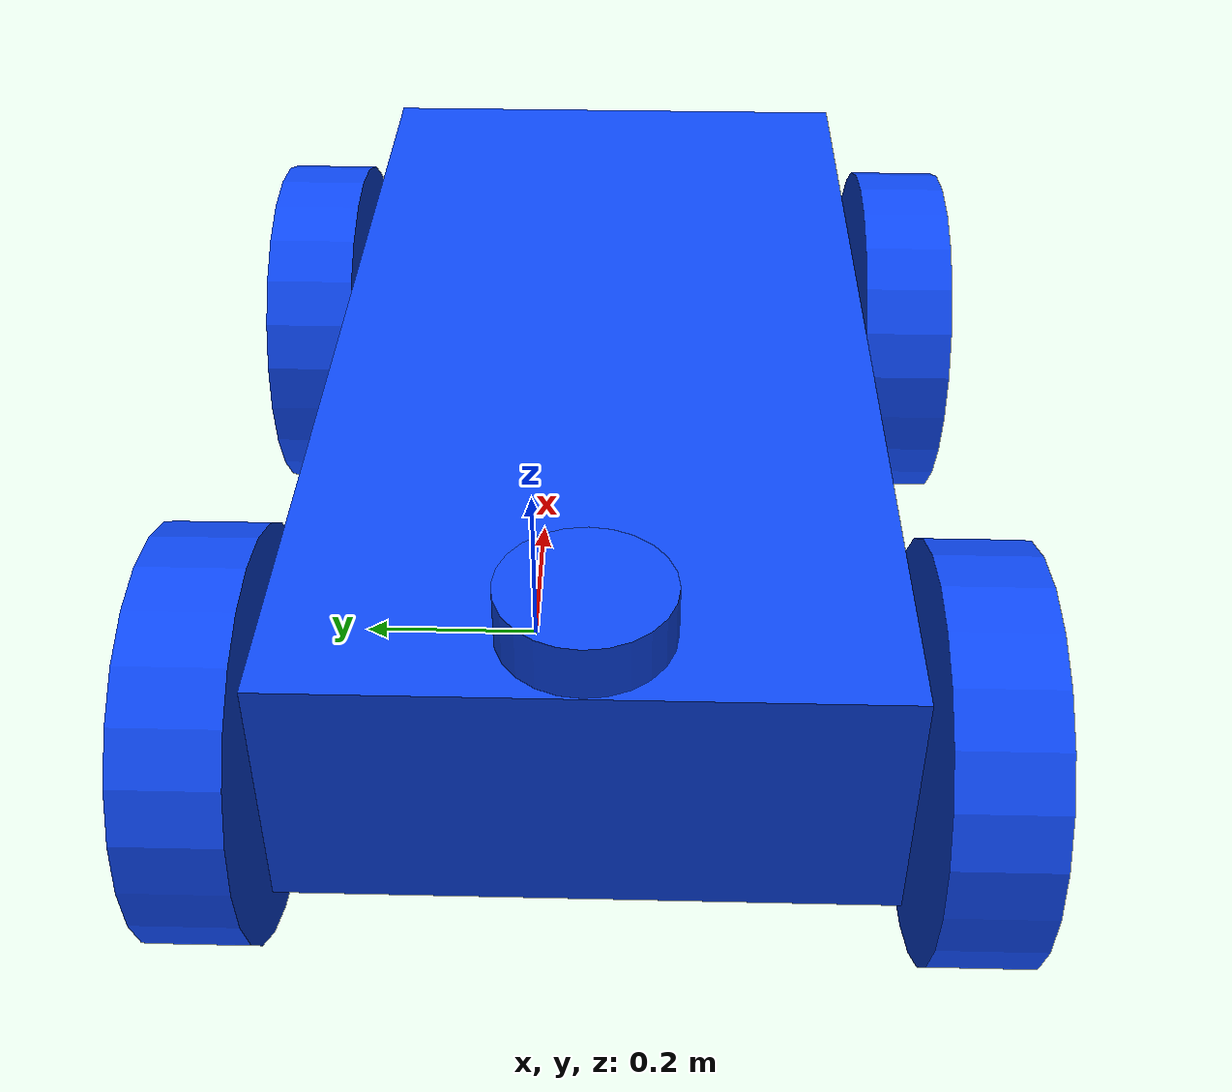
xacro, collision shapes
<?xml version="1.0" ?>
<robot name="k12" xmlns:xacro="http://www.ros.org/wiki/xacro">

<xacro:include filename="$(find k12_description)/urdf/materials.xacro" />
<xacro:include filename="$(find k12_description)/urdf/k12.trans" />
<xacro:include filename="$(find k12_description)/urdf/k12.gazebo" />

<link name="base_link">
  <inertial>
    <origin xyz="0 -0.08 0.30" rpy="0 0 0"/>
    <mass value="24.0"/>
    <inertia ixx="0.7202" iyy="2.5352" izz="3.0250" ixy="0.0" iyz="0.0" ixz="0.0"/>
  </inertial>
  <visual>
    <origin xyz="0 0 0" rpy="0 0 0"/>
    <geometry>
      <mesh filename="file://$(find k12_description)/meshes/base_link.stl" scale="0.001 0.001 0.001"/>
    </geometry>
    <material name="silver"/>
  </visual>
  <visual name="rviz_blue_body_marker">
    <origin xyz="0 -0.08 0.46" rpy="0 0 0"/>
    <geometry>
      <box size="1.05 0.50 0.08"/>
    </geometry>
    <material name="rviz_blue"/>
  </visual>
  <visual name="rviz_front_direction_marker">
    <origin xyz="0.42 -0.08 0.52" rpy="0 0 0"/>
    <geometry>
      <box size="0.18 0.42 0.045"/>
    </geometry>
    <material name="rviz_yellow"/>
  </visual>
  <collision>
    <origin xyz="0 -0.08 0.30" rpy="0 0 0"/>
    <geometry>
      <box size="1.10 0.55 0.24"/>
    </geometry>
  </collision>
</link>

<link name="left_front_1">
  <inertial>
    <origin xyz="0 0 0" rpy="0 0 0"/>
    <mass value="1.5"/>
    <inertia ixx="0.01625" iyy="0.03000" izz="0.01625" ixy="0.0" iyz="0.0" ixz="0.0"/>
  </inertial>
  <visual>
    <origin xyz="0.379738 0.435 -0.2" rpy="0 0 0"/>
    <geometry>
      <mesh filename="file://$(find k12_description)/meshes/left_front_1.stl" scale="0.001 0.001 0.001"/>
    </geometry>
    <material name="silver"/>
  </visual>
  <collision>
    <origin xyz="0 0 0" rpy="1.57079632679 0 0"/>
    <geometry>
      <cylinder radius="0.20" length="0.10"/>
    </geometry>
  </collision>
</link>

<link name="left_back_1">
  <inertial>
    <origin xyz="0 0 0" rpy="0 0 0"/>
    <mass value="1.5"/>
    <inertia ixx="0.01625" iyy="0.03000" izz="0.01625" ixy="0.0" iyz="0.0" ixz="0.0"/>
  </inertial>
  <visual>
    <origin xyz="-0.373496 0.435 -0.2" rpy="0 0 0"/>
    <geometry>
      <mesh filename="file://$(find k12_description)/meshes/left_back_1.stl" scale="0.001 0.001 0.001"/>
    </geometry>
    <material name="silver"/>
  </visual>
  <collision>
    <origin xyz="0 0 0" rpy="1.57079632679 0 0"/>
    <geometry>
      <cylinder radius="0.20" length="0.10"/>
    </geometry>
  </collision>
</link>

<link name="right_back_1">
  <inertial>
    <origin xyz="0 0 0" rpy="0 0 0"/>
    <mass value="1.5"/>
    <inertia ixx="0.01625" iyy="0.03000" izz="0.01625" ixy="0.0" iyz="0.0" ixz="0.0"/>
  </inertial>
  <visual>
    <origin xyz="-0.373538 -0.275 -0.2" rpy="0 0 0"/>
    <geometry>
      <mesh filename="file://$(find k12_description)/meshes/right_back_1.stl" scale="0.001 0.001 0.001"/>
    </geometry>
    <material name="silver"/>
  </visual>
  <collision>
    <origin xyz="0 0 0" rpy="1.57079632679 0 0"/>
    <geometry>
      <cylinder radius="0.20" length="0.10"/>
    </geometry>
  </collision>
</link>

<link name="right_front_1">
  <inertial>
    <origin xyz="0 0 0" rpy="0 0 0"/>
    <mass value="1.5"/>
    <inertia ixx="0.01625" iyy="0.03000" izz="0.01625" ixy="0.0" iyz="0.0" ixz="0.0"/>
  </inertial>
  <visual>
    <origin xyz="0.372187 -0.275 -0.2" rpy="0 0 0"/>
    <geometry>
      <mesh filename="file://$(find k12_description)/meshes/right_front_1.stl" scale="0.001 0.001 0.001"/>
    </geometry>
    <material name="silver"/>
  </visual>
  <collision>
    <origin xyz="0 0 0" rpy="1.57079632679 0 0"/>
    <geometry>
      <cylinder radius="0.20" length="0.10"/>
    </geometry>
  </collision>
</link>

<link name="lidar_1">
  <inertial>
    <origin xyz="0 0 0.025" rpy="0 0 0"/>
    <mass value="0.30"/>
    <inertia ixx="0.000484" iyy="0.000484" izz="0.000844" ixy="0.0" iyz="0.0" ixz="0.0"/>
  </inertial>
  <visual>
    <origin xyz="0.5 0.08 -0.445" rpy="0 0 0"/>
    <geometry>
      <mesh filename="file://$(find k12_description)/meshes/lidar_1.stl" scale="0.001 0.001 0.001"/>
    </geometry>
    <material name="silver"/>
  </visual>
  <collision>
    <origin xyz="0 0 0.025" rpy="0 0 0"/>
    <geometry>
      <cylinder radius="0.075" length="0.05"/>
    </geometry>
  </collision>
</link>

<link name="cam_1">
  <inertial>
    <origin xyz="0 0 0" rpy="0 0 0"/>
    <mass value="0.10"/>
    <inertia ixx="0.000027" iyy="0.000067" izz="0.000067" ixy="0.0" iyz="0.0" ixz="0.0"/>
  </inertial>
  <visual>
    <origin xyz="0 0 0" rpy="0 0 0"/>
    <geometry>
      <mesh filename="file://$(find k12_description)/meshes/cam_1.stl" scale="0.001 0.001 0.001"/>
    </geometry>
    <material name="silver"/>
  </visual>
  <collision>
    <origin xyz="0 0 0" rpy="0 0 0"/>
    <geometry>
      <box size="0.08 0.04 0.04"/>
    </geometry>
  </collision>
</link>

<link name="imu_1">
  <inertial>
    <origin xyz="0 0 0" rpy="0 0 0"/>
    <mass value="0.05"/>
    <inertia ixx="0.000005" iyy="0.000008" izz="0.000010" ixy="0.0" iyz="0.0" ixz="0.0"/>
  </inertial>
  <visual>
    <origin xyz="-0.0 0.08 -0.4" rpy="0 0 0"/>
    <geometry>
      <mesh filename="file://$(find k12_description)/meshes/imu_1.stl" scale="0.001 0.001 0.001"/>
    </geometry>
    <material name="silver"/>
  </visual>
  <collision>
    <origin xyz="0 0 0" rpy="0 0 0"/>
    <geometry>
      <box size="0.04 0.03 0.015"/>
    </geometry>
  </collision>
</link>

<link name="gps_1">
  <inertial>
    <origin xyz="0 0 0" rpy="0 0 0"/>
    <mass value="0.08"/>
    <inertia ixx="0.000035" iyy="0.000035" izz="0.000064" ixy="0.0" iyz="0.0" ixz="0.0"/>
  </inertial>
  <visual>
    <origin xyz="-0.45 0.08 -0.4" rpy="0 0 0"/>
    <geometry>
      <mesh filename="file://$(find k12_description)/meshes/gps_1.stl" scale="0.001 0.001 0.001"/>
    </geometry>
    <material name="silver"/>
  </visual>
  <collision>
    <origin xyz="0 0 0" rpy="0 0 0"/>
    <geometry>
      <cylinder radius="0.04" length="0.02"/>
    </geometry>
  </collision>
</link>

<joint name="revolute_17" type="continuous">
  <origin xyz="-0.379738 -0.435 0.2" rpy="0 0 0"/>
  <parent link="base_link"/>
  <child link="left_front_1"/>
  <axis xyz="0.0 1.0 0.0"/>
</joint>

<joint name="revolute_18" type="continuous">
  <origin xyz="0.373496 -0.435 0.2" rpy="0 0 0"/>
  <parent link="base_link"/>
  <child link="left_back_1"/>
  <axis xyz="0.0 1.0 0.0"/>
</joint>

<joint name="revolute_19" type="continuous">
  <origin xyz="0.373538 0.275 0.2" rpy="0 0 0"/>
  <parent link="base_link"/>
  <child link="right_back_1"/>
  <axis xyz="0.0 1.0 0.0"/>
</joint>

<joint name="revolute_20" type="continuous">
  <origin xyz="-0.372187 0.275 0.2" rpy="0 0 0"/>
  <parent link="base_link"/>
  <child link="right_front_1"/>
  <axis xyz="0.0 1.0 0.0"/>
</joint>

<joint name="Rigid 21" type="fixed">
  <origin xyz="-0.5 -0.08 0.445" rpy="0 0 0"/>
  <parent link="base_link"/>
  <child link="lidar_1"/>
</joint>

<joint name="Rigid 22" type="fixed">
  <origin xyz="0.59 0.0 0.32" rpy="0 0 0"/>
  <parent link="base_link"/>
  <child link="cam_1"/>
</joint>

<!-- ROS camera optical convention: x right, y down, z forward. -->
<link name="cam_1_optical"/>
<joint name="cam_1_optical_joint" type="fixed">
  <origin xyz="0 0 0" rpy="-1.57079632679 0 -1.57079632679"/>
  <parent link="cam_1"/>
  <child link="cam_1_optical"/>
</joint>

<joint name="Rigid 23" type="fixed">
  <origin xyz="0.0 -0.08 0.4" rpy="0 0 0"/>
  <parent link="base_link"/>
  <child link="imu_1"/>
</joint>

<joint name="Rigid 24" type="fixed">
  <origin xyz="0.45 -0.08 0.4" rpy="0 0 0"/>
  <parent link="base_link"/>
  <child link="gps_1"/>
</joint>

</robot>

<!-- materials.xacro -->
<robot name="k12" xmlns:xacro="http://www.ros.org/wiki/xacro" >

<material name="silver">
  <color rgba="0.050 0.280 0.950 1.000"/>
</material>

<material name="rviz_blue">
  <color rgba="0.000 0.180 1.000 1.000"/>
</material>

<material name="rviz_yellow">
  <color rgba="1.000 0.780 0.000 1.000"/>
</material>

</robot>

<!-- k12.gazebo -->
<robot name="k12" xmlns:xacro="http://www.ros.org/wiki/xacro" >

<xacro:property name="body_color" value="Gazebo/Grey" />

<gazebo reference="base_link">
  <material>${body_color}</material>
  <mu1>0.5</mu1>
  <mu2>0.5</mu2>
  <self_collide>false</self_collide>
  <gravity>true</gravity>
</gazebo>

<gazebo reference="left_front_1">
  <material>${body_color}</material>
  <mu1>0.8</mu1>
  <mu2>0.8</mu2>
  <kp>100000</kp>
  <kd>0.6</kd>
  <self_collide>false</self_collide>
</gazebo>

<gazebo reference="left_back_1">
  <material>${body_color}</material>
  <mu1>0.8</mu1>
  <mu2>0.8</mu2>
  <kp>100000</kp>
  <kd>0.6</kd>
  <self_collide>false</self_collide>
</gazebo>

<gazebo reference="right_back_1">
  <material>${body_color}</material>
  <mu1>0.8</mu1>
  <mu2>0.8</mu2>
  <kp>100000</kp>
  <kd>0.6</kd>
  <self_collide>false</self_collide>
</gazebo>

<gazebo reference="right_front_1">
  <material>${body_color}</material>
  <mu1>0.8</mu1>
  <mu2>0.8</mu2>
  <kp>100000</kp>
  <kd>0.6</kd>
  <self_collide>false</self_collide>
</gazebo>

<gazebo>
    <plugin name="gazebo_ros_joint_state_publisher"
            filename="libgazebo_ros_joint_state_publisher.so">
        <update_rate>50</update_rate>
        <joint_name>revolute_17</joint_name>
        <joint_name>revolute_18</joint_name>
        <joint_name>revolute_19</joint_name>
        <joint_name>revolute_20</joint_name>
    </plugin>
</gazebo>

<gazebo reference="lidar_1">
  <material>${body_color}</material>
  <mu1>0.5</mu1>
  <mu2>0.5</mu2>
  <self_collide>false</self_collide>
</gazebo>

<gazebo reference="cam_1">
  <material>${body_color}</material>
  <mu1>0.5</mu1>
  <mu2>0.5</mu2>
  <self_collide>false</self_collide>
</gazebo>

<gazebo reference="imu_1">
  <material>${body_color}</material>
  <mu1>0.5</mu1>
  <mu2>0.5</mu2>
  <self_collide>false</self_collide>
</gazebo>

<gazebo reference="gps_1">
  <material>${body_color}</material>
  <mu1>0.5</mu1>
  <mu2>0.5</mu2>
  <self_collide>false</self_collide>
</gazebo>

<gazebo>
    <plugin name="diff_drive" filename="libgazebo_ros_diff_drive.so">
        <num_wheel_pairs>2</num_wheel_pairs>

        <left_joint>revolute_19</left_joint>
        <right_joint>revolute_18</right_joint>

        <left_joint>revolute_20</left_joint>
        <right_joint>revolute_17</right_joint>

        <command_topic>cmd_vel</command_topic>
        <odometry_topic>odom</odometry_topic>

        <wheel_separation>0.71</wheel_separation>
        <wheel_separation>0.71</wheel_separation>

        <wheel_diameter>0.40</wheel_diameter>
        <wheel_diameter>0.40</wheel_diameter>

        <max_wheel_torque>120.0</max_wheel_torque>
        <max_wheel_acceleration>4.0</max_wheel_acceleration>

        <odometry_frame>odom</odometry_frame>
        <robot_base_frame>base_link</robot_base_frame>
        <!-- Use Gazebo world odometry (1) for stable simulated SLAM during skid-steer turns. -->
        <odometry_source>1</odometry_source>

        <ros>
          <!-- Direct teleop/Nav2 command path. -->
          <remapping>cmd_vel:=/cmd_vel</remapping>
          <remapping>odom:=/odom</remapping>
        </ros>

        <publish_odom>true</publish_odom>
        <publish_odom_tf>true</publish_odom_tf>
        <!-- robot_state_publisher owns wheel link TF from /joint_states. -->
        <publish_wheel_tf>false</publish_wheel_tf>
    </plugin>
</gazebo>

<gazebo reference="lidar_1">
  <sensor name="velodyne-VLP16" type="ray">
    <always_on>true</always_on>
    <pose>0 0 0 0 0 0</pose>
    <visualize>false</visualize>
    <enable_metrics>false</enable_metrics>
    <update_rate>10</update_rate>
    <ray>
      <scan>
        <horizontal>
          <samples>512</samples>
          <resolution>1</resolution>
          <min_angle>-3.14159</min_angle>
          <max_angle>3.14159</max_angle>
        </horizontal>
        <vertical>
          <samples>16</samples>
          <resolution>1</resolution>
          <min_angle>-0.261799</min_angle>
          <max_angle>0.261799</max_angle>
        </vertical>
      </scan>
      <range>
        <min>0.10</min>
        <max>100.0</max>
        <resolution>0.01</resolution>
      </range>
      <noise>
        <type>gaussian</type>
        <mean>0.0</mean>
        <stddev>0.01</stddev>
      </noise>
    </ray>

    <plugin name="lidar_plugin" filename="libgazebo_ros_ray_sensor.so">
      <ros>
        <remapping>~/out:=/velodyne_points</remapping>
      </ros>
      <output_type>sensor_msgs/PointCloud2</output_type>
      <frameName>lidar_1</frameName>
    </plugin>
  </sensor>
</gazebo>

<gazebo reference="imu_1">
  <sensor name="imu_sensor" type="imu">
    <always_on>true</always_on>
    <update_rate>500.0</update_rate>
    <visualize>false</visualize>
    <imu>
      <angular_velocity>
        <x><noise type="gaussian"><mean>0.0</mean><stddev>0.0002</stddev></noise></x>
        <y><noise type="gaussian"><mean>0.0</mean><stddev>0.0002</stddev></noise></y>
        <z><noise type="gaussian"><mean>0.0</mean><stddev>0.0002</stddev></noise></z>
      </angular_velocity>
      <linear_acceleration>
        <x><noise type="gaussian"><mean>0.0</mean><stddev>0.0004</stddev></noise></x>
        <y><noise type="gaussian"><mean>0.0</mean><stddev>0.0004</stddev></noise></y>
        <z><noise type="gaussian"><mean>0.0</mean><stddev>0.0004</stddev></noise></z>
      </linear_acceleration>
    </imu>
    <plugin name="imu_plugin" filename="libgazebo_ros_imu_sensor.so">
      <ros>
        <remapping>~/out:=/imu/data</remapping>
      </ros>
      <frameName>imu_1</frameName>
    </plugin>
  </sensor>
</gazebo>

<gazebo reference="cam_1">
  <sensor name="depth_camera" type="depth">
    <always_on>true</always_on>
    <update_rate>30</update_rate>
    <visualize>true</visualize>
    <!-- Keep sensor pose aligned with cam_1 TF to avoid depth cloud tilt/ghosting. -->
    <pose>0 0 0 0 0 0</pose>

    <camera>
      <horizontal_fov>1.047</horizontal_fov>
      <image>
        <width>640</width>
        <height>480</height>
        <format>R8G8B8</format>
      </image>
      <clip>
        <near>0.1</near>
        <far>12.0</far>
      </clip>
    </camera>

    <plugin name="depth_camera_plugin" filename="libgazebo_ros_camera.so">
      <ros>
        <namespace>/camera</namespace>
        <remapping>image_raw:=rgb/image_raw</remapping>
        <remapping>depth/image_raw:=depth/image_raw</remapping>
        <remapping>camera_info:=camera_info</remapping>
      </ros>
      <frame_name>cam_1_optical</frame_name>
      <!-- Keep enough range for a natural live camera view while still bounding depth output. -->
      <min_depth>0.12</min_depth>
      <max_depth>10.0</max_depth>
      <pointCloudCutoff>0.12</pointCloudCutoff>
      <pointCloudCutoffMax>10.0</pointCloudCutoffMax>
    </plugin>
  </sensor>
</gazebo>

</robot>
